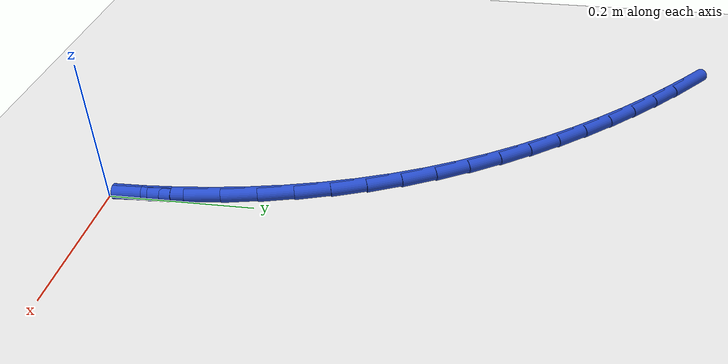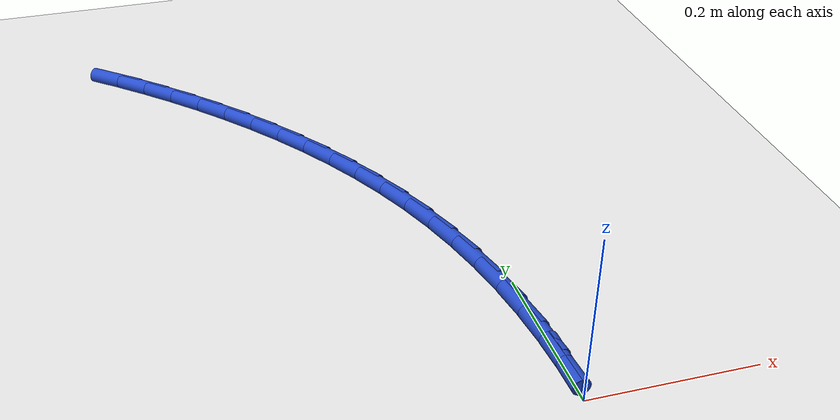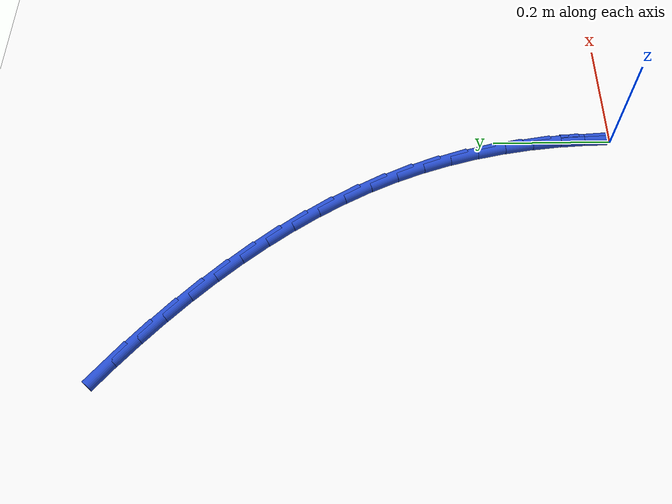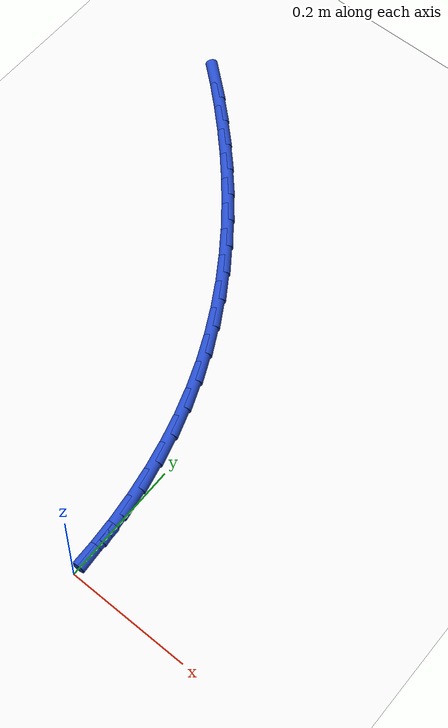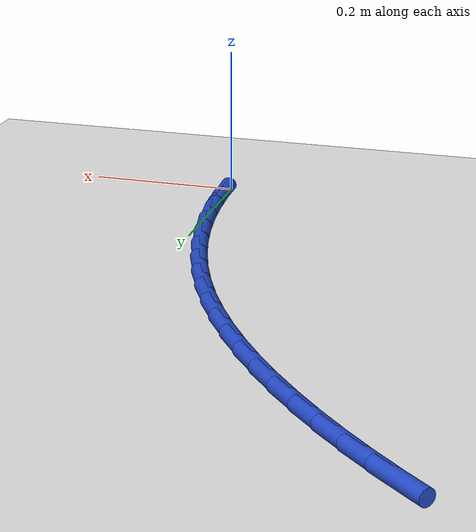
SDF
<sdf version="1.6">
 <world name="default">
  <model name="ground_plane">
   <static>1</static>
   <link name="link">
    <collision name="collision">
     <geometry><plane><normal>0 0 1</normal><size>100 100</size></plane></geometry>
     <surface><friction><ode><mu>100</mu><mu2>50</mu2></ode></friction></surface>
    </collision>
    <visual name="visual">
     <cast_shadows>0</cast_shadows>
     <geometry><plane><normal>0 0 1</normal><size>100 100</size></plane></geometry>
     <material>
      <script><uri>file://media/materials/scripts/gazebo.material</uri><name>Gazebo/WhiteGlow</name></script>
     </material>
    </visual>
   </link>
  </model>
  <model name="line">
   <link name="link_1">
    <pose>-0.0010954406119171873 0.04848591718881564 0.01 0 1.57 -1.501787488764423</pose>
    <collision name="collision">
     <geometry><cylinder><radius>0.01</radius><length>0.08</length></cylinder></geometry>
    </collision>
    <visual name="visual">
     <material>
      <script><name>Gazebo/Blue</name><uri>file://media/materials/scripts/gazebo.material</uri></script>
     </material>
     <geometry><cylinder><radius>0.01</radius><length>0.08</length></cylinder></geometry>
    </visual>
   </link>
   <link name="link_2">
    <pose>-0.004433356410017526 0.09677850667080834 0.01 0 1.57 -1.4543632147195704</pose>
    <collision name="collision">
     <geometry><cylinder><radius>0.01</radius><length>0.08</length></cylinder></geometry>
    </collision>
    <visual name="visual">
     <material>
      <script><name>Gazebo/Blue</name><uri>file://media/materials/scripts/gazebo.material</uri></script>
     </material>
     <geometry><cylinder><radius>0.01</radius><length>0.08</length></cylinder></geometry>
    </visual>
   </link>
   <link name="link_3">
    <pose>-0.010046095050334335 0.14476616448148594 0.01 0 1.57 -1.4058237800581286</pose>
    <collision name="collision">
     <geometry><cylinder><radius>0.01</radius><length>0.08</length></cylinder></geometry>
    </collision>
    <visual name="visual">
     <material>
      <script><name>Gazebo/Blue</name><uri>file://media/materials/scripts/gazebo.material</uri></script>
     </material>
     <geometry><cylinder><radius>0.01</radius><length>0.08</length></cylinder></geometry>
    </visual>
   </link>
   <link name="link_4">
    <pose>-0.017966004188900972 0.19233728665635616 0.01 0 1.57 -1.3560721611729443</pose>
    <collision name="collision">
     <geometry><cylinder><radius>0.01</radius><length>0.08</length></cylinder></geometry>
    </collision>
    <visual name="visual">
     <material>
      <script><name>Gazebo/Blue</name><uri>file://media/materials/scripts/gazebo.material</uri></script>
     </material>
     <geometry><cylinder><radius>0.01</radius><length>0.08</length></cylinder></geometry>
    </visual>
   </link>
   <link name="link_5">
    <pose>-0.02822543148175078 0.2393802692309269 0.01 0 1.57 -1.3050284625541118</pose>
    <collision name="collision">
     <geometry><cylinder><radius>0.01</radius><length>0.08</length></cylinder></geometry>
    </collision>
    <visual name="visual">
     <material>
      <script><name>Gazebo/Blue</name><uri>file://media/materials/scripts/gazebo.material</uri></script>
     </material>
     <geometry><cylinder><radius>0.01</radius><length>0.08</length></cylinder></geometry>
    </visual>
   </link>
   <link name="link_6">
    <pose>-0.04085672458491714 0.285783508240706 0.01 0 1.57 -1.2526339373679325</pose>
    <collision name="collision">
     <geometry><cylinder><radius>0.01</radius><length>0.08</length></cylinder></geometry>
    </collision>
    <visual name="visual">
     <material>
      <script><name>Gazebo/Blue</name><uri>file://media/materials/scripts/gazebo.material</uri></script>
     </material>
     <geometry><cylinder><radius>0.01</radius><length>0.08</length></cylinder></geometry>
    </visual>
   </link>
   <link name="link_7">
    <pose>-0.05589223115443333 0.33143539972120095 0.01 0 1.57 -1.198855352976733</pose>
    <collision name="collision">
     <geometry><cylinder><radius>0.01</radius><length>0.08</length></cylinder></geometry>
    </collision>
    <visual name="visual">
     <material>
      <script><name>Gazebo/Blue</name><uri>file://media/materials/scripts/gazebo.material</uri></script>
     </material>
     <geometry><cylinder><radius>0.01</radius><length>0.08</length></cylinder></geometry>
    </visual>
   </link>
   <link name="link_8">
    <pose>-0.07336429884633273 0.3762243397079197 0.01 0 1.57 -1.1441724733756722</pose>
    <collision name="collision">
     <geometry><cylinder><radius>0.01</radius><length>0.08</length></cylinder></geometry>
    </collision>
    <visual name="visual">
     <material>
      <script><name>Gazebo/Blue</name><uri>file://media/materials/scripts/gazebo.material</uri></script>
     </material>
     <geometry><cylinder><radius>0.01</radius><length>0.08</length></cylinder></geometry>
    </visual>
   </link>
   <link name="link_9">
    <pose>-0.0932835645288864 0.42004714761470185 0.01 0 1.57 -1.091595191402601</pose>
    <collision name="collision">
     <geometry><cylinder><radius>0.01</radius><length>0.08</length></cylinder></geometry>
    </collision>
    <visual name="visual">
     <material>
      <script><name>Gazebo/Blue</name><uri>file://media/materials/scripts/gazebo.material</uri></script>
     </material>
     <geometry><cylinder><radius>0.01</radius><length>0.08</length></cylinder></geometry>
    </visual>
   </link>
   <link name="link_10">
    <pose>-0.11552537760816552 0.46285313185256727 0.01 0 1.57 -1.0422132514952542</pose>
    <collision name="collision">
     <geometry><cylinder><radius>0.01</radius><length>0.08</length></cylinder></geometry>
    </collision>
    <visual name="visual">
     <material>
      <script><name>Gazebo/Blue</name><uri>file://media/materials/scripts/gazebo.material</uri></script>
     </material>
     <geometry><cylinder><radius>0.01</radius><length>0.08</length></cylinder></geometry>
    </visual>
   </link>
   <link name="link_11">
    <pose>-0.1399130666953582 0.5046117839249792 0.01 0 1.57 -0.9959046782068822</pose>
    <collision name="collision">
     <geometry><cylinder><radius>0.01</radius><length>0.08</length></cylinder></geometry>
    </collision>
    <visual name="visual">
     <material>
      <script><name>Gazebo/Blue</name><uri>file://media/materials/scripts/gazebo.material</uri></script>
     </material>
     <geometry><cylinder><radius>0.01</radius><length>0.08</length></cylinder></geometry>
    </visual>
   </link>
   <link name="link_12">
    <pose>-0.16626985199106573 0.5452926373966743 0.01 0 1.57 -0.9525078751169277</pose>
    <collision name="collision">
     <geometry><cylinder><radius>0.01</radius><length>0.08</length></cylinder></geometry>
    </collision>
    <visual name="visual">
     <material>
      <script><name>Gazebo/Blue</name><uri>file://media/materials/scripts/gazebo.material</uri></script>
     </material>
     <geometry><cylinder><radius>0.01</radius><length>0.08</length></cylinder></geometry>
    </visual>
   </link>
   <link name="link_13">
    <pose>-0.1944189536958893 0.5848652258323891 0.01 0 1.57 -0.911837483212894</pose>
    <collision name="collision">
     <geometry><cylinder><radius>0.01</radius><length>0.08</length></cylinder></geometry>
    </collision>
    <visual name="visual">
     <material>
      <script><name>Gazebo/Blue</name><uri>file://media/materials/scripts/gazebo.material</uri></script>
     </material>
     <geometry><cylinder><radius>0.01</radius><length>0.08</length></cylinder></geometry>
    </visual>
   </link>
   <link name="link_14">
    <pose>-0.22418359201043045 0.6232990827968604 0.01 0 1.57 -0.8736948732035715</pose>
    <collision name="collision">
     <geometry><cylinder><radius>0.01</radius><length>0.08</length></cylinder></geometry>
    </collision>
    <visual name="visual">
     <material>
      <script><name>Gazebo/Blue</name><uri>file://media/materials/scripts/gazebo.material</uri></script>
     </material>
     <geometry><cylinder><radius>0.01</radius><length>0.08</length></cylinder></geometry>
    </visual>
   </link>
   <link name="link_15">
    <pose>-0.25538698713529034 0.6605637418548251 0.01 0 1.57 -0.8378758866540472</pose>
    <collision name="collision">
     <geometry><cylinder><radius>0.01</radius><length>0.08</length></cylinder></geometry>
    </collision>
    <visual name="visual">
     <material>
      <script><name>Gazebo/Blue</name><uri>file://media/materials/scripts/gazebo.material</uri></script>
     </material>
     <geometry><cylinder><radius>0.01</radius><length>0.08</length></cylinder></geometry>
    </visual>
   </link>
   <link name="link_16">
    <pose>-0.28785235927107045 0.69662873657102 0.01 0 1.57 -0.8041761921825845</pose>
    <collision name="collision">
     <geometry><cylinder><radius>0.01</radius><length>0.08</length></cylinder></geometry>
    </collision>
    <visual name="visual">
     <material>
      <script><name>Gazebo/Blue</name><uri>file://media/materials/scripts/gazebo.material</uri></script>
     </material>
     <geometry><cylinder><radius>0.01</radius><length>0.08</length></cylinder></geometry>
    </visual>
   </link>
   <link name="link_17">
    <pose>-0.321402928618372 0.7314636005101814 0.01 0 1.57 -0.7723946670096957</pose>
    <collision name="collision">
     <geometry><cylinder><radius>0.01</radius><length>0.08</length></cylinder></geometry>
    </collision>
    <visual name="visual">
     <material>
      <script><name>Gazebo/Blue</name><uri>file://media/materials/scripts/gazebo.material</uri></script>
     </material>
     <geometry><cylinder><radius>0.01</radius><length>0.08</length></cylinder></geometry>
    </visual>
   </link>
   <link name="link_18">
    <pose>-0.3558619153777963 0.7650378672370467 0.01 0 1.57 -0.7423351864331231</pose>
    <collision name="collision">
     <geometry><cylinder><radius>0.01</radius><length>0.08</length></cylinder></geometry>
    </collision>
    <visual name="visual">
     <material>
      <script><name>Gazebo/Blue</name><uri>file://media/materials/scripts/gazebo.material</uri></script>
     </material>
     <geometry><cylinder><radius>0.01</radius><length>0.08</length></cylinder></geometry>
    </visual>
   </link>
   <link name="link_19">
    <pose>-0.3910525397499448 0.7973210703163522 0.01 0 1.57 -0.7138536059161544</pose>
    <collision name="collision">
     <geometry><cylinder><radius>0.01</radius><length>0.08</length></cylinder></geometry>
    </collision>
    <visual name="visual">
     <material>
      <script><name>Gazebo/Blue</name><uri>file://media/materials/scripts/gazebo.material</uri></script>
     </material>
     <geometry><cylinder><radius>0.01</radius><length>0.08</length></cylinder></geometry>
    </visual>
   </link>
   <link name="link_161">
    <pose>-0.0010851105957215296 0.04847588477786335 0.01 0 1.57 -1.5484155199842966</pose>
    <collision name="collision">
     <geometry><cylinder><radius>0.01</radius><length>0.08</length></cylinder></geometry>
    </collision>
    <visual name="visual">
     <material>
      <script><name>Gazebo/Blue</name><uri>file://media/materials/scripts/gazebo.material</uri></script>
     </material>
     <geometry><cylinder><radius>0.01</radius><length>0.08</length></cylinder></geometry>
    </visual>
   </link>
  </model>
 </world>
</sdf>
